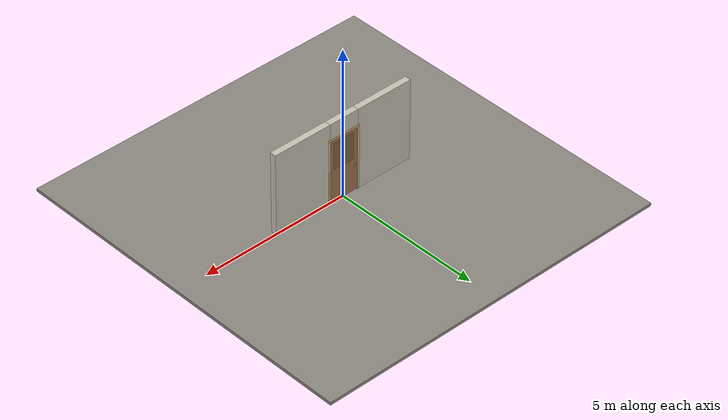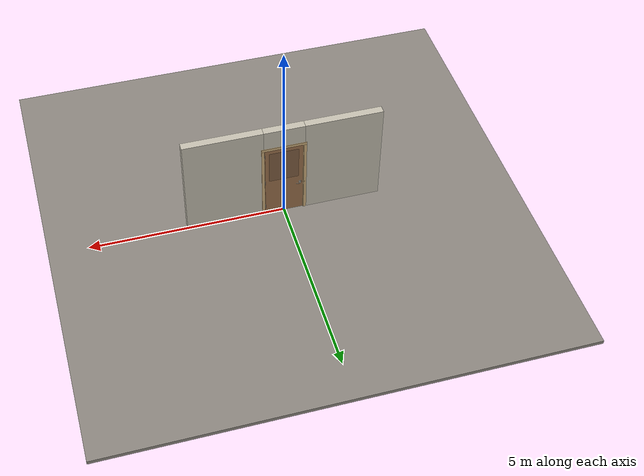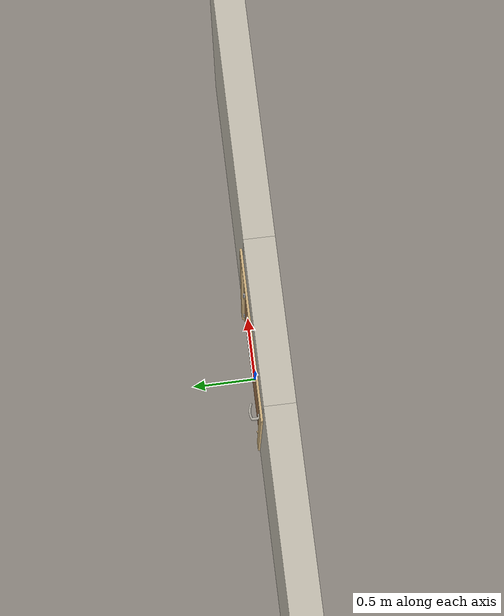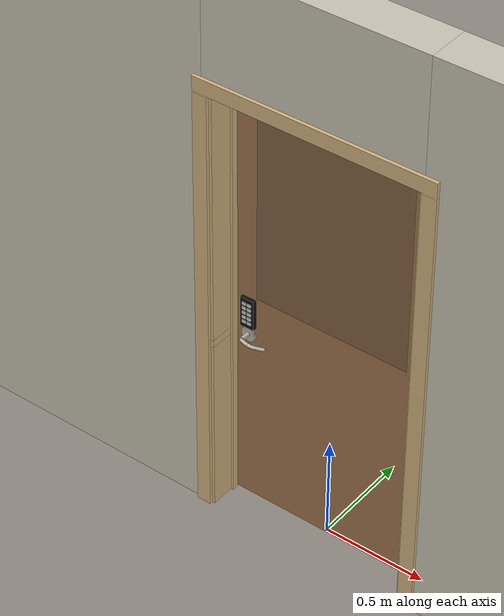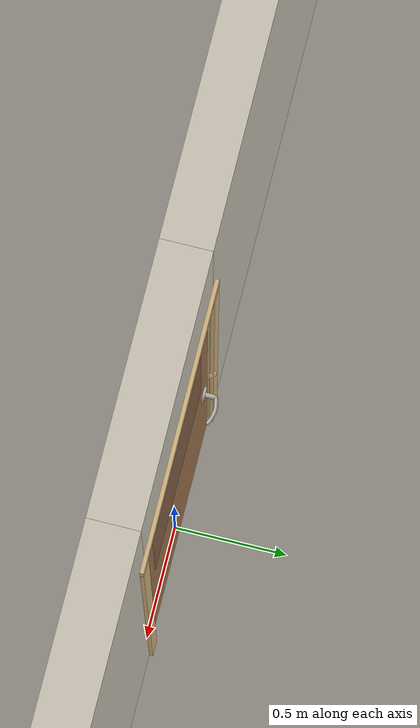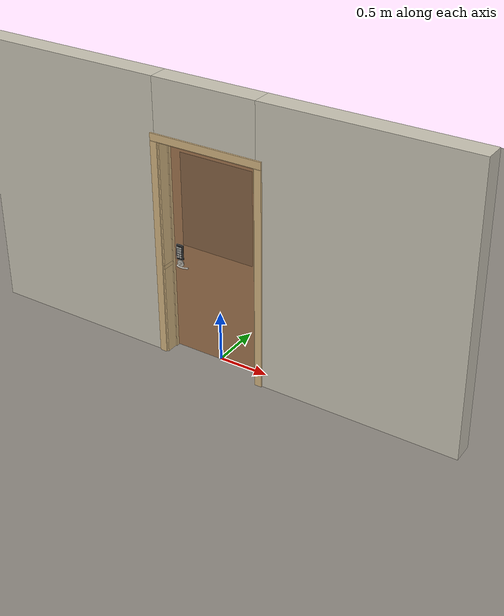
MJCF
<?xml version="1.0" ?>
<mujoco model="db0622_swing_single_full">
  <compiler angle="radian" meshdir="../../hardware" texturedir="../../textures" autolimits="true" inertiafromgeom="false"/>
  <option timestep="0.002" integrator="implicitfast" cone="elliptic" impratio="10" noslip_iterations="3">
    <flag multiccd="enable"/>
  </option>
  <size memory="16M"/>
  <default>
    <geom condim="4" solref="0.005 1" solimp="0.95 0.99 0.001"/>
    <joint solreflimit="0.005 1" solimplimit="0.95 0.99 0.001"/>
    <tendon solreflimit="0.005 1"/>
    <equality solref="0.002 1"/>
  </default>
  <visual>
    <headlight ambient="0.4 0.4 0.4" diffuse="0.7 0.7 0.7" specular="0.2 0.2 0.2"/>
    <quality shadowsize="4096"/>
    <map znear="0.01" zfar="60"/>
  </visual>
  <asset>
    <mesh name="hinge_e22b26c0c1" file="hinge_e22b26c0c1.obj"/>
    <mesh name="hinge_jamb_e1d088f8dc" file="hinge_jamb_e1d088f8dc.obj"/>
    <mesh name="keypad_body_3b2d063948" file="keypad_body_3b2d063948.obj"/>
    <mesh name="lever_a61139b160" file="lever_a61139b160.obj"/>
    <material name="mat_floor" rgba="0.55 0.53 0.5 1" specular="0.2" shininess="0.15" reflectance="0"/>
    <material name="mat_wall" rgba="0.78 0.76 0.7 1" specular="0.2" shininess="0.1" reflectance="0"/>
    <material name="mat_leaf" rgba="0.62 0.45 0.3 1" specular="0.2" shininess="0.5" reflectance="0"/>
    <material name="mat_glass" rgba="0.45 0.35 0.28 0.45" specular="0.2" shininess="0.95" reflectance="0.1"/>
    <material name="mat_hinge" rgba="0.65 0.66 0.68 1" specular="0.74" shininess="0.5" reflectance="0.36"/>
    <material name="mat_op_nickel_satin" rgba="0.72 0.7 0.66 1" specular="0.8" shininess="0.65" reflectance="0.4"/>
    <material name="mat_trim" rgba="0.85 0.66 0.3 1" specular="0.8" shininess="0.75" reflectance="0.4"/>
    <material name="mat_keypad" rgba="0.05 0.05 0.05 1" specular="0.38" shininess="0.3" reflectance="0.12"/>
    <material name="mat_key" rgba="0.85 0.85 0.82 1" specular="0.2" shininess="0.5" reflectance="0"/>
    <material name="mat_bolt" rgba="0.85 0.66 0.3 1" specular="0.8" shininess="0.75" reflectance="0.4"/>
    <material name="mat_frame" rgba="0.82 0.7 0.5 1" specular="0.2" shininess="0.45" reflectance="0"/>
    <material name="mat_seal" rgba="0.1 0.1 0.1 1" specular="0.2" shininess="0.1" reflectance="0"/>
    <texture name="skybox" type="skybox" builtin="gradient" rgb1="0.6 0.7 0.85" rgb2="0.9 0.92 0.95" width="256" height="256"/>
  </asset>
  <worldbody>
    <light name="sun" pos="1.5 -2.5 4" dir="-0.3 0.5 -0.8" directional="true" diffuse="0.8 0.8 0.8" specular="0.3 0.3 0.3" castshadow="true"/>
    <light name="fill" pos="-1.5 2.5 3" dir="0.3 -0.5 -0.7" directional="true" diffuse="0.35 0.35 0.4" castshadow="false"/>
    <camera name="robot_view" pos="0 -2.708813 1.812087" xyaxes="1 0 0 0 0.26963 0.962964" fovy="52"/>
    <camera name="far_view" pos="0 2.566812 1.812087" xyaxes="-1 0 0 0 -0.26963 0.962964" fovy="52"/>
    <camera name="iso" pos="-2.004737 -2.286763 2.234138" xyaxes="0.741536 -0.670913 0 0.242917 0.268487 0.932151" fovy="46"/>
    <camera name="detail_handle" pos="-0.1424 -0.723 1.194" xyaxes="0.97561 0.219512 0 -0.070934 0.315262 0.94635" fovy="38"/>
    <geom name="floor" type="box" size="6 6 0.05" pos="0 0 -0.05" material="mat_floor" group="0" contype="1" conaffinity="1" friction="0.8 0.005 0.0001" density="2400"/>
    <geom name="wall_left" type="box" size="0.9825 0.1 1.3735" pos="-1.5175 -0.071 1.3735" material="mat_wall" group="0" contype="1" conaffinity="1" friction="0.6 0.005 0.0001" density="800"/>
    <geom name="wall_right" type="box" size="0.9975 0.1 1.3735" pos="1.5025 -0.071 1.3735" material="mat_wall" group="0" contype="1" conaffinity="1" friction="0.6 0.005 0.0001" density="800"/>
    <geom name="wall_header" type="box" size="0.52 0.1 0.2755" pos="-0.015 -0.071 2.4715" material="mat_wall" group="0" contype="1" conaffinity="1" friction="0.6 0.005 0.0001" density="800"/>
    <geom name="hinge_0_jamb" type="mesh" mesh="hinge_jamb_e1d088f8dc" pos="0.483 0.029 0.259" quat="0 0 0 1" material="mat_hinge" group="1" contype="0" conaffinity="0" density="7850"/>
    <geom name="hinge_1_jamb" type="mesh" mesh="hinge_jamb_e1d088f8dc" pos="0.483 0.029 1.076" quat="0 0 0 1" material="mat_hinge" group="1" contype="0" conaffinity="0" density="7850"/>
    <geom name="hinge_2_jamb" type="mesh" mesh="hinge_jamb_e1d088f8dc" pos="0.483 0.029 1.963" quat="0 0 0 1" material="mat_hinge" group="1" contype="0" conaffinity="0" density="7850"/>
    <geom name="jamb_hinge" type="box" size="0.0095 0.1 1.0735" pos="0.4955 -0.071 1.0735" material="mat_frame" group="0" contype="1" conaffinity="1" friction="0.6 0.005 0.0001" density="400"/>
    <geom name="strike_914_wall_n" type="box" size="0.0245 0.08075 0.0183" pos="-0.5105 -0.09025 0.914" material="mat_frame" group="0" contype="1" conaffinity="1" friction="0.6 0.005 0.0001" density="400"/>
    <geom name="strike_914_wall_p" type="box" size="0.0245 0.008 0.0183" pos="-0.5105 0.0175 0.914" material="mat_frame" group="0" contype="1" conaffinity="1" friction="0.6 0.005 0.0001" density="400"/>
    <geom name="strike_914_ramp" type="box" size="0.0245 0.018028 0.0183" pos="-0.516385 0.02691 0.914" quat="0.957092 0 0 0.289784" material="mat_frame" group="0" contype="1" conaffinity="1" friction="0.12 0.005 0.0001" density="400"/>
    <geom name="strike_914_back" type="box" size="0.013 0.0095 0.0183" pos="-0.522 0 0.914" material="mat_frame" group="0" contype="1" conaffinity="1" friction="0.6 0.005 0.0001" density="400"/>
    <geom name="jamb_strike_0" type="box" size="0.0245 0.1 0.44785" pos="-0.5105 -0.071 0.44785" material="mat_frame" group="0" contype="1" conaffinity="1" friction="0.6 0.005 0.0001" density="400"/>
    <geom name="jamb_strike_1" type="box" size="0.0245 0.1 0.60735" pos="-0.5105 -0.071 1.53965" material="mat_frame" group="0" contype="1" conaffinity="1" friction="0.6 0.005 0.0001" density="400"/>
    <geom name="jamb_head" type="box" size="0.52 0.1 0.0095" pos="-0.015 -0.071 2.1565" material="mat_frame" group="0" contype="1" conaffinity="1" friction="0.6 0.005 0.0001" density="400"/>
    <geom name="head_stud" type="box" size="0.52 0.1 0.015" pos="-0.015 -0.071 2.181" material="mat_wall" group="0" contype="1" conaffinity="1" friction="0.6 0.005 0.0001" density="500"/>
    <geom name="stop_hinge" type="box" size="0.0055 0.016 1.0735" pos="0.4805 -0.0385 1.0735" material="mat_frame" group="0" contype="1" conaffinity="1" friction="0.6 0.005 0.0001" density="400"/>
    <geom name="stop_strike" type="box" size="0.0055 0.016 1.0735" pos="-0.4805 -0.0385 1.0735" material="mat_frame" group="0" contype="1" conaffinity="1" friction="0.6 0.005 0.0001" density="400"/>
    <geom name="stop_head" type="box" size="0.486 0.016 0.0055" pos="0 -0.0385 2.1415" material="mat_frame" group="0" contype="1" conaffinity="1" friction="0.6 0.005 0.0001" density="400"/>
    <geom name="seal_hinge" type="box" size="0.004 0.003 1.0735" pos="0.483 -0.025 1.0735" material="mat_seal" group="1" contype="0" conaffinity="0" density="1100"/>
    <geom name="seal_strike" type="box" size="0.004 0.003 1.0735" pos="-0.483 -0.025 1.0735" material="mat_seal" group="1" contype="0" conaffinity="0" density="1100"/>
    <geom name="seal_head" type="box" size="0.466 0.003 0.008" pos="0 -0.025 2.135" material="mat_seal" group="1" contype="0" conaffinity="0" density="1100"/>
    <geom name="casing_l_n" type="box" size="0.035 0.008 1.083" pos="-0.535 -0.179 1.0735" material="mat_frame" group="2" contype="0" conaffinity="0" density="400"/>
    <geom name="casing_r_n" type="box" size="0.035 0.008 1.083" pos="0.535 -0.179 1.0735" material="mat_frame" group="2" contype="0" conaffinity="0" density="400"/>
    <geom name="casing_h_n" type="box" size="0.57 0.008 0.035" pos="0 -0.179 2.196" material="mat_frame" group="2" contype="0" conaffinity="0" density="400"/>
    <geom name="casing_l_p" type="box" size="0.035 0.008 1.083" pos="-0.535 0.037 1.0735" material="mat_frame" group="2" contype="0" conaffinity="0" density="400"/>
    <geom name="casing_r_p" type="box" size="0.035 0.008 1.083" pos="0.535 0.037 1.0735" material="mat_frame" group="2" contype="0" conaffinity="0" density="400"/>
    <geom name="casing_h_p" type="box" size="0.57 0.008 0.035" pos="0 0.037 2.196" material="mat_frame" group="2" contype="0" conaffinity="0" density="400"/>
    <site name="approach_point" pos="0 -1.5 0" quat="1 0 0 0" size="0.05" rgba="0.2 0.9 0.2 0.5" group="4"/>
    <site name="goal_point" pos="0 1.5 0" quat="1 0 0 0" size="0.05" rgba="0.2 0.9 0.2 0.5" group="4"/>
    <site name="door_plane_center" pos="0 0 1.0735" quat="1 0 0 0" size="0.02" rgba="0.2 0.9 0.2 0.5" group="4"/>
    <body name="leaf" pos="0.486 0 0">
      <inertial pos="-0.481624 -0.000011 1.076286" mass="54.080829" quat="0.499496 0.50115 -0.498822 0.500529" diaginertia="4.396589898 20.42244083 24.800025215"/>
      <joint name="leaf_hinge" type="hinge" axis="0 0 -1" pos="-0.003 0.029 0" limited="true" range="0 1.570796" solreflimit="0.02 1" damping="0.384212" frictionloss="2.37318" armature="0.02"/>
      <geom name="leaf_slab" type="box" size="0.4825 0.022 1.067" pos="-0.4855 0 1.076" material="mat_leaf" group="0" contype="1" conaffinity="1" friction="0.4 0.005 0.0001" density="1"/>
      <geom name="leaf_glass_0" type="box" size="0.37635 0.0228 0.45881" pos="-0.4855 0 1.57749" material="mat_glass" group="1" contype="0" conaffinity="0" density="1"/>
      <geom name="hinge_0" type="mesh" mesh="hinge_e22b26c0c1" pos="-0.003 0.029 0.259" quat="0 0 0 1" material="mat_hinge" group="1" contype="0" conaffinity="0" density="7850"/>
      <geom name="hinge_1" type="mesh" mesh="hinge_e22b26c0c1" pos="-0.003 0.029 1.076" quat="0 0 0 1" material="mat_hinge" group="1" contype="0" conaffinity="0" density="7850"/>
      <geom name="hinge_2" type="mesh" mesh="hinge_e22b26c0c1" pos="-0.003 0.029 1.963" quat="0 0 0 1" material="mat_hinge" group="1" contype="0" conaffinity="0" density="7850"/>
      <geom name="leaf_keypad_body" type="mesh" mesh="keypad_body_3b2d063948" pos="-0.898 -0.022 1.034" quat="0.707107 0.707107 0 0" material="mat_keypad" group="0" contype="1" conaffinity="1" friction="0.6 0.005 0.0001" density="2000"/>
      <geom name="leaf_latch_bolt_faceplate" type="box" size="0.0006 0.014 0.0283" pos="-0.9674 0 0.914" material="mat_bolt" group="1" contype="0" conaffinity="0" density="8500"/>
      <site name="leaf_edge_mid" pos="-0.968 0 1.067" quat="1 0 0 0" size="0.02" rgba="0.2 0.9 0.2 0.5" group="4"/>
      <body name="leaf_handle" pos="-0.898 0 0.914">
        <inertial pos="0.022132 0.050687 0" mass="0.463269" quat="-0.312008 0 0 0.950079" diaginertia="0.000227859 0.000847742 0.000992066"/>
        <joint name="leaf_handle_hinge" type="hinge" axis="0 1 0" limited="true" range="0 0.87" damping="0.208392" frictionloss="0.052" stiffness="1" springref="-0.35" armature="0.01"/>
        <geom name="leaf_handle_spindle" type="cylinder" size="0.006 0.03" pos="0 0 0" quat="0.707107 -0.707107 0 0" material="mat_op_nickel_satin" group="1" contype="0" conaffinity="0" density="7850"/>
        <geom name="leaf_handle_lever_p" type="mesh" mesh="lever_a61139b160" pos="0 0.022 0" quat="0 0 0.707107 0.707107" material="mat_op_nickel_satin" group="1" contype="0" conaffinity="0" density="3000"/>
        <geom name="leaf_handle_lever_col_p" type="capsule" size="0.008 0.048" pos="0.056 0.077 0" quat="0.707107 0 0.707107 0" material="mat_op_nickel_satin" group="3" contype="1" conaffinity="1" rgba="0.8 0.3 0.3 0.25" friction="0.7 0.01 0.0001" density="3000"/>
        <geom name="leaf_handle_hub_col_p" type="cylinder" size="0.012 0.022" pos="0 0.052 0" quat="0.707107 -0.707107 0 0" material="mat_op_nickel_satin" group="3" contype="1" conaffinity="1" rgba="0.8 0.3 0.3 0.25" friction="0.6 0.005 0.0001" density="3000"/>
        <site name="leaf_handle_grip_p" pos="0.0896 0.077 0" quat="1 0 0 0" size="0.012" rgba="0.2 0.9 0.2 0.5" group="4"/>
      </body>
      <body name="leaf_keypad_key_1" pos="-0.911 -0.042 1.082">
        <inertial pos="0 -0.0015 0" mass="0.001008" quat="0 0 0.707107 0.707107" diaginertia="0.000000017 0.000000034 0.00000005"/>
        <joint name="leaf_keypad_key_1_slide" type="slide" axis="0 1 0" limited="true" range="0 0.0015" damping="14" frictionloss="0.05" stiffness="1000" springref="-0.0015" armature="0.1"/>
        <geom name="leaf_keypad_key_1_geom" type="box" size="0.01 0.0015 0.007" pos="0 -0.0015 0" material="mat_key" group="0" contype="1" conaffinity="1" friction="0.6 0.005 0.0001" density="1200"/>
        <site name="leaf_keypad_key_1_press" pos="0 -0.005 0" quat="1 0 0 0" size="0.008" rgba="0.2 0.9 0.2 0.5" group="4"/>
      </body>
      <body name="leaf_keypad_key_2" pos="-0.885 -0.042 1.082">
        <inertial pos="0 -0.0015 0" mass="0.001008" quat="0 0 0.707107 0.707107" diaginertia="0.000000017 0.000000034 0.00000005"/>
        <joint name="leaf_keypad_key_2_slide" type="slide" axis="0 1 0" limited="true" range="0 0.0015" damping="14" frictionloss="0.05" stiffness="1000" springref="-0.0015" armature="0.1"/>
        <geom name="leaf_keypad_key_2_geom" type="box" size="0.01 0.0015 0.007" pos="0 -0.0015 0" material="mat_key" group="0" contype="1" conaffinity="1" friction="0.6 0.005 0.0001" density="1200"/>
        <site name="leaf_keypad_key_2_press" pos="0 -0.005 0" quat="1 0 0 0" size="0.008" rgba="0.2 0.9 0.2 0.5" group="4"/>
      </body>
      <body name="leaf_keypad_key_3" pos="-0.911 -0.042 1.058">
        <inertial pos="0 -0.0015 0" mass="0.001008" quat="0 0 0.707107 0.707107" diaginertia="0.000000017 0.000000034 0.00000005"/>
        <joint name="leaf_keypad_key_3_slide" type="slide" axis="0 1 0" limited="true" range="0 0.0015" damping="14" frictionloss="0.05" stiffness="1000" springref="-0.0015" armature="0.1"/>
        <geom name="leaf_keypad_key_3_geom" type="box" size="0.01 0.0015 0.007" pos="0 -0.0015 0" material="mat_key" group="0" contype="1" conaffinity="1" friction="0.6 0.005 0.0001" density="1200"/>
        <site name="leaf_keypad_key_3_press" pos="0 -0.005 0" quat="1 0 0 0" size="0.008" rgba="0.2 0.9 0.2 0.5" group="4"/>
      </body>
      <body name="leaf_keypad_key_4" pos="-0.885 -0.042 1.058">
        <inertial pos="0 -0.0015 0" mass="0.001008" quat="0 0 0.707107 0.707107" diaginertia="0.000000017 0.000000034 0.00000005"/>
        <joint name="leaf_keypad_key_4_slide" type="slide" axis="0 1 0" limited="true" range="0 0.0015" damping="14" frictionloss="0.05" stiffness="1000" springref="-0.0015" armature="0.1"/>
        <geom name="leaf_keypad_key_4_geom" type="box" size="0.01 0.0015 0.007" pos="0 -0.0015 0" material="mat_key" group="0" contype="1" conaffinity="1" friction="0.6 0.005 0.0001" density="1200"/>
        <site name="leaf_keypad_key_4_press" pos="0 -0.005 0" quat="1 0 0 0" size="0.008" rgba="0.2 0.9 0.2 0.5" group="4"/>
      </body>
      <body name="leaf_keypad_key_5" pos="-0.911 -0.042 1.034">
        <inertial pos="0 -0.0015 0" mass="0.001008" quat="0 0 0.707107 0.707107" diaginertia="0.000000017 0.000000034 0.00000005"/>
        <joint name="leaf_keypad_key_5_slide" type="slide" axis="0 1 0" limited="true" range="0 0.0015" damping="14" frictionloss="0.05" stiffness="1000" springref="-0.0015" armature="0.1"/>
        <geom name="leaf_keypad_key_5_geom" type="box" size="0.01 0.0015 0.007" pos="0 -0.0015 0" material="mat_key" group="0" contype="1" conaffinity="1" friction="0.6 0.005 0.0001" density="1200"/>
        <site name="leaf_keypad_key_5_press" pos="0 -0.005 0" quat="1 0 0 0" size="0.008" rgba="0.2 0.9 0.2 0.5" group="4"/>
      </body>
      <body name="leaf_keypad_key_6" pos="-0.885 -0.042 1.034">
        <inertial pos="0 -0.0015 0" mass="0.001008" quat="0 0 0.707107 0.707107" diaginertia="0.000000017 0.000000034 0.00000005"/>
        <joint name="leaf_keypad_key_6_slide" type="slide" axis="0 1 0" limited="true" range="0 0.0015" damping="14" frictionloss="0.05" stiffness="1000" springref="-0.0015" armature="0.1"/>
        <geom name="leaf_keypad_key_6_geom" type="box" size="0.01 0.0015 0.007" pos="0 -0.0015 0" material="mat_key" group="0" contype="1" conaffinity="1" friction="0.6 0.005 0.0001" density="1200"/>
        <site name="leaf_keypad_key_6_press" pos="0 -0.005 0" quat="1 0 0 0" size="0.008" rgba="0.2 0.9 0.2 0.5" group="4"/>
      </body>
      <body name="leaf_keypad_key_7" pos="-0.911 -0.042 1.01">
        <inertial pos="0 -0.0015 0" mass="0.001008" quat="0 0 0.707107 0.707107" diaginertia="0.000000017 0.000000034 0.00000005"/>
        <joint name="leaf_keypad_key_7_slide" type="slide" axis="0 1 0" limited="true" range="0 0.0015" damping="14" frictionloss="0.05" stiffness="1000" springref="-0.0015" armature="0.1"/>
        <geom name="leaf_keypad_key_7_geom" type="box" size="0.01 0.0015 0.007" pos="0 -0.0015 0" material="mat_key" group="0" contype="1" conaffinity="1" friction="0.6 0.005 0.0001" density="1200"/>
        <site name="leaf_keypad_key_7_press" pos="0 -0.005 0" quat="1 0 0 0" size="0.008" rgba="0.2 0.9 0.2 0.5" group="4"/>
      </body>
      <body name="leaf_keypad_key_8" pos="-0.885 -0.042 1.01">
        <inertial pos="0 -0.0015 0" mass="0.001008" quat="0 0 0.707107 0.707107" diaginertia="0.000000017 0.000000034 0.00000005"/>
        <joint name="leaf_keypad_key_8_slide" type="slide" axis="0 1 0" limited="true" range="0 0.0015" damping="14" frictionloss="0.05" stiffness="1000" springref="-0.0015" armature="0.1"/>
        <geom name="leaf_keypad_key_8_geom" type="box" size="0.01 0.0015 0.007" pos="0 -0.0015 0" material="mat_key" group="0" contype="1" conaffinity="1" friction="0.6 0.005 0.0001" density="1200"/>
        <site name="leaf_keypad_key_8_press" pos="0 -0.005 0" quat="1 0 0 0" size="0.008" rgba="0.2 0.9 0.2 0.5" group="4"/>
      </body>
      <body name="leaf_keypad_key_9" pos="-0.911 -0.042 0.986">
        <inertial pos="0 -0.0015 0" mass="0.001008" quat="0 0 0.707107 0.707107" diaginertia="0.000000017 0.000000034 0.00000005"/>
        <joint name="leaf_keypad_key_9_slide" type="slide" axis="0 1 0" limited="true" range="0 0.0015" damping="14" frictionloss="0.05" stiffness="1000" springref="-0.0015" armature="0.1"/>
        <geom name="leaf_keypad_key_9_geom" type="box" size="0.01 0.0015 0.007" pos="0 -0.0015 0" material="mat_key" group="0" contype="1" conaffinity="1" friction="0.6 0.005 0.0001" density="1200"/>
        <site name="leaf_keypad_key_9_press" pos="0 -0.005 0" quat="1 0 0 0" size="0.008" rgba="0.2 0.9 0.2 0.5" group="4"/>
      </body>
      <body name="leaf_keypad_key_0" pos="-0.885 -0.042 0.986">
        <inertial pos="0 -0.0015 0" mass="0.001008" quat="0 0 0.707107 0.707107" diaginertia="0.000000017 0.000000034 0.00000005"/>
        <joint name="leaf_keypad_key_0_slide" type="slide" axis="0 1 0" limited="true" range="0 0.0015" damping="14" frictionloss="0.05" stiffness="1000" springref="-0.0015" armature="0.1"/>
        <geom name="leaf_keypad_key_0_geom" type="box" size="0.01 0.0015 0.007" pos="0 -0.0015 0" material="mat_key" group="0" contype="1" conaffinity="1" friction="0.6 0.005 0.0001" density="1200"/>
        <site name="leaf_keypad_key_0_press" pos="0 -0.005 0" quat="1 0 0 0" size="0.008" rgba="0.2 0.9 0.2 0.5" group="4"/>
      </body>
      <body name="leaf_handle_out" pos="-0.898 0 0.914">
        <inertial pos="0.025007 -0.057273 0" mass="0.41" quat="0.235955 0 0 0.971764" diaginertia="0.000156759 0.000717302 0.000791484"/>
        <joint name="leaf_handle_out_hinge" type="hinge" axis="0 1 0" limited="true" range="0 0.87" damping="0.208382" frictionloss="0.052" stiffness="1" springref="-0.35" armature="0.01"/>
        <geom name="leaf_handle_out_lever_n" type="mesh" mesh="lever_a61139b160" pos="0 -0.022 0" quat="0 0 -0.707107 0.707107" material="mat_op_nickel_satin" group="1" contype="0" conaffinity="0" density="3000"/>
        <geom name="leaf_handle_out_lever_col_n" type="capsule" size="0.008 0.048" pos="0.056 -0.077 0" quat="0.707107 0 0.707107 0" material="mat_op_nickel_satin" group="3" contype="1" conaffinity="1" rgba="0.8 0.3 0.3 0.25" friction="0.7 0.01 0.0001" density="3000"/>
        <geom name="leaf_handle_out_hub_col_n" type="cylinder" size="0.012 0.022" pos="0 -0.052 0" quat="0.707107 -0.707107 0 0" material="mat_op_nickel_satin" group="3" contype="1" conaffinity="1" rgba="0.8 0.3 0.3 0.25" friction="0.6 0.005 0.0001" density="3000"/>
        <site name="leaf_handle_out_grip_n" pos="0.0896 -0.077 0" quat="1 0 0 0" size="0.012" rgba="0.2 0.9 0.2 0.5" group="4"/>
      </body>
      <body name="leaf_latch_bolt" pos="-0.968 0 0.914">
        <inertial pos="0.0055 0 0" mass="0.074627" quat="0.92388 0.382683 0 0" diaginertia="0.000002271 0.000013255 0.000013255"/>
        <joint name="leaf_latch_bolt_slide" type="slide" axis="1 0 0" limited="true" range="0 0.019" damping="2" frictionloss="0.3" stiffness="600" springref="-0.01" armature="0.1"/>
        <geom name="leaf_latch_bolt_capsule" type="capsule" size="0.008 0.0165" pos="0.0055 0 0" quat="0.707107 0 -0.707107 0" material="mat_bolt" group="0" contype="1" conaffinity="1" friction="0.2 0.005 0.0001" density="8500"/>
      </body>
    </body>
  </worldbody>
  <tendon>
    <fixed name="leaf_latch_bolt_coupling" limited="true" range="0 10">
      <joint joint="leaf_latch_bolt_slide" coef="1"/>
      <joint joint="leaf_handle_hinge" coef="-0.023457"/>
      <joint joint="leaf_handle_out_hinge" coef="-0.023457"/>
    </fixed>
  </tendon>
  <sensor>
    <jointpos name="leaf_hinge_pos" joint="leaf_hinge"/>
    <jointvel name="leaf_hinge_vel" joint="leaf_hinge"/>
    <jointpos name="leaf_handle_hinge_pos" joint="leaf_handle_hinge"/>
    <jointvel name="leaf_handle_hinge_vel" joint="leaf_handle_hinge"/>
    <jointpos name="leaf_keypad_key_1_slide_pos" joint="leaf_keypad_key_1_slide"/>
    <jointvel name="leaf_keypad_key_1_slide_vel" joint="leaf_keypad_key_1_slide"/>
    <jointpos name="leaf_keypad_key_2_slide_pos" joint="leaf_keypad_key_2_slide"/>
    <jointvel name="leaf_keypad_key_2_slide_vel" joint="leaf_keypad_key_2_slide"/>
    <jointpos name="leaf_keypad_key_3_slide_pos" joint="leaf_keypad_key_3_slide"/>
    <jointvel name="leaf_keypad_key_3_slide_vel" joint="leaf_keypad_key_3_slide"/>
    <jointpos name="leaf_keypad_key_4_slide_pos" joint="leaf_keypad_key_4_slide"/>
    <jointvel name="leaf_keypad_key_4_slide_vel" joint="leaf_keypad_key_4_slide"/>
    <jointpos name="leaf_keypad_key_5_slide_pos" joint="leaf_keypad_key_5_slide"/>
    <jointvel name="leaf_keypad_key_5_slide_vel" joint="leaf_keypad_key_5_slide"/>
    <jointpos name="leaf_keypad_key_6_slide_pos" joint="leaf_keypad_key_6_slide"/>
    <jointvel name="leaf_keypad_key_6_slide_vel" joint="leaf_keypad_key_6_slide"/>
    <jointpos name="leaf_keypad_key_7_slide_pos" joint="leaf_keypad_key_7_slide"/>
    <jointvel name="leaf_keypad_key_7_slide_vel" joint="leaf_keypad_key_7_slide"/>
    <jointpos name="leaf_keypad_key_8_slide_pos" joint="leaf_keypad_key_8_slide"/>
    <jointvel name="leaf_keypad_key_8_slide_vel" joint="leaf_keypad_key_8_slide"/>
    <jointpos name="leaf_keypad_key_9_slide_pos" joint="leaf_keypad_key_9_slide"/>
    <jointvel name="leaf_keypad_key_9_slide_vel" joint="leaf_keypad_key_9_slide"/>
    <jointpos name="leaf_keypad_key_0_slide_pos" joint="leaf_keypad_key_0_slide"/>
    <jointvel name="leaf_keypad_key_0_slide_vel" joint="leaf_keypad_key_0_slide"/>
    <jointpos name="leaf_handle_out_hinge_pos" joint="leaf_handle_out_hinge"/>
    <jointvel name="leaf_handle_out_hinge_vel" joint="leaf_handle_out_hinge"/>
    <jointpos name="leaf_latch_bolt_slide_pos" joint="leaf_latch_bolt_slide"/>
    <jointvel name="leaf_latch_bolt_slide_vel" joint="leaf_latch_bolt_slide"/>
  </sensor>
</mujoco>
